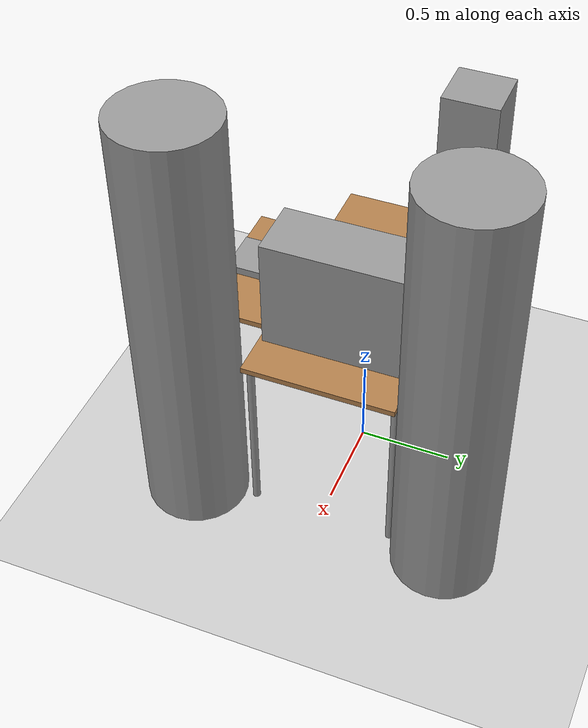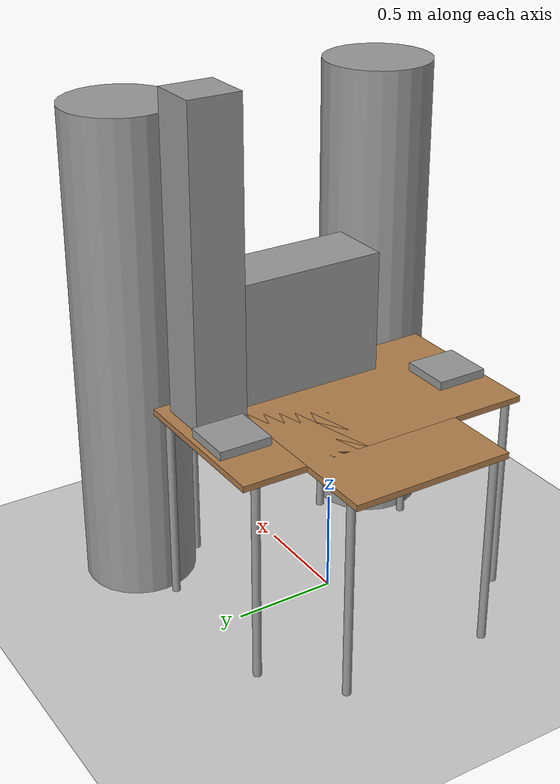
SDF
<sdf version="1.7">
 <world name="default">
  <light name="sun" type="directional">
   <pose>0 0 10 0 -0 0</pose>
   <diffuse>0.8 0.8 0.8 1</diffuse>
   <specular>0.2 0.2 0.2 1</specular>
   <attenuation>
    <range>1000</range>
    <constant>0.9</constant>
    <linear>0.01</linear>
    <quadratic>0.001</quadratic>
   </attenuation>
   <direction>-0.5 0.1 -0.9</direction>
   <spot><inner_angle>0</inner_angle><outer_angle>0</outer_angle><falloff>0</falloff></spot>
  </light>
  <model name="ground_plane">
   <static>1</static>
   <link name="link">
    <collision name="collision">
     <geometry><plane><normal>0 0 1</normal><size>100 100</size></plane></geometry>
     <surface>
      <contact><collide_bitmask>65535</collide_bitmask></contact>
      <friction><ode><mu>100</mu><mu2>50</mu2></ode></friction>
     </surface>
    </collision>
    <visual name="visual">
     <cast_shadows>0</cast_shadows>
     <geometry><plane><normal>0 0 1</normal><size>100 100</size></plane></geometry>
     <material>
      <script><uri>file://media/materials/scripts/gazebo.material</uri><name>Gazebo/Grey</name></script>
     </material>
    </visual>
   </link>
  </model>
  <gravity>0 0 -9.8</gravity>
  <magnetic_field>6e-06 2.3e-05 -4.2e-05</magnetic_field>
  <atmosphere type="adiabatic"/>
  <physics type="ode">
   <max_step_size>0.001</max_step_size>
   <real_time_factor>1</real_time_factor>
   <real_time_update_rate>1000</real_time_update_rate>
  </physics>
  <scene><ambient>0.4 0.4 0.4 1</ambient><background>0.7 0.7 0.7 1</background><shadows>1</shadows></scene>
  <spherical_coordinates>
   <surface_model>EARTH_WGS84</surface_model>
   <latitude_deg>0</latitude_deg>
   <longitude_deg>0</longitude_deg>
   <elevation>0</elevation>
   <heading_deg>0</heading_deg>
  </spherical_coordinates>
  <model name="table">
   <static>1</static>
   <link name="link">
    <collision name="surface">
     <pose>0 0 1 0 -0 0</pose>
     <geometry><box><size>1.5 0.8 0.03</size></box></geometry>
     <surface><friction><ode><mu>0.6</mu><mu2>0.6</mu2></ode></friction></surface>
    </collision>
    <visual name="visual1">
     <pose>0 0 1 0 -0 0</pose>
     <geometry><box><size>1.5 0.8 0.03</size></box></geometry>
     <material>
      <script><uri>file://media/materials/scripts/gazebo.material</uri><name>Gazebo/Wood</name></script>
     </material>
    </visual>
    <collision name="front_left_leg">
     <pose>0.68 0.38 0.5 0 -0 0</pose>
     <geometry><cylinder><radius>0.02</radius><length>1</length></cylinder></geometry>
    </collision>
    <visual name="front_left_leg">
     <pose>0.68 0.38 0.5 0 -0 0</pose>
     <geometry><cylinder><radius>0.02</radius><length>1</length></cylinder></geometry>
     <material>
      <script><uri>file://media/materials/scripts/gazebo.material</uri><name>Gazebo/Grey</name></script>
     </material>
    </visual>
    <collision name="front_right_leg">
     <pose>0.68 -0.38 0.5 0 -0 0</pose>
     <geometry><cylinder><radius>0.02</radius><length>1</length></cylinder></geometry>
    </collision>
    <visual name="front_right_leg">
     <pose>0.68 -0.38 0.5 0 -0 0</pose>
     <geometry><cylinder><radius>0.02</radius><length>1</length></cylinder></geometry>
     <material>
      <script><uri>file://media/materials/scripts/gazebo.material</uri><name>Gazebo/Grey</name></script>
     </material>
    </visual>
    <collision name="back_right_leg">
     <pose>-0.68 -0.38 0.5 0 -0 0</pose>
     <geometry><cylinder><radius>0.02</radius><length>1</length></cylinder></geometry>
    </collision>
    <visual name="back_right_leg">
     <pose>-0.68 -0.38 0.5 0 -0 0</pose>
     <geometry><cylinder><radius>0.02</radius><length>1</length></cylinder></geometry>
     <material>
      <script><uri>file://media/materials/scripts/gazebo.material</uri><name>Gazebo/Grey</name></script>
     </material>
    </visual>
    <collision name="back_left_leg">
     <pose>-0.68 0.38 0.5 0 -0 0</pose>
     <geometry><cylinder><radius>0.02</radius><length>1</length></cylinder></geometry>
    </collision>
    <visual name="back_left_leg">
     <pose>-0.68 0.38 0.5 0 -0 0</pose>
     <geometry><cylinder><radius>0.02</radius><length>1</length></cylinder></geometry>
     <material>
      <script><uri>file://media/materials/scripts/gazebo.material</uri><name>Gazebo/Grey</name></script>
     </material>
    </visual>
   </link>
   <pose>-0.021785 -0.027231 0 0 0 -1.56814</pose>
  </model>
  <model name="table_0">
   <static>1</static>
   <link name="link">
    <collision name="surface">
     <pose>0 0 1 0 -0 0</pose>
     <geometry><box><size>1.5 0.8 0.03</size></box></geometry>
     <surface><friction><ode><mu>0.6</mu><mu2>0.6</mu2></ode></friction></surface>
    </collision>
    <visual name="visual1">
     <pose>0 0 1 0 -0 0</pose>
     <geometry><box><size>1.5 0.8 0.03</size></box></geometry>
     <material>
      <script><uri>file://media/materials/scripts/gazebo.material</uri><name>Gazebo/Wood</name></script>
     </material>
    </visual>
    <collision name="front_left_leg">
     <pose>0.68 0.38 0.5 0 -0 0</pose>
     <geometry><cylinder><radius>0.02</radius><length>1</length></cylinder></geometry>
    </collision>
    <visual name="front_left_leg">
     <pose>0.68 0.38 0.5 0 -0 0</pose>
     <geometry><cylinder><radius>0.02</radius><length>1</length></cylinder></geometry>
     <material>
      <script><uri>file://media/materials/scripts/gazebo.material</uri><name>Gazebo/Grey</name></script>
     </material>
    </visual>
    <collision name="front_right_leg">
     <pose>0.68 -0.38 0.5 0 -0 0</pose>
     <geometry><cylinder><radius>0.02</radius><length>1</length></cylinder></geometry>
    </collision>
    <visual name="front_right_leg">
     <pose>0.68 -0.38 0.5 0 -0 0</pose>
     <geometry><cylinder><radius>0.02</radius><length>1</length></cylinder></geometry>
     <material>
      <script><uri>file://media/materials/scripts/gazebo.material</uri><name>Gazebo/Grey</name></script>
     </material>
    </visual>
    <collision name="back_right_leg">
     <pose>-0.68 -0.38 0.5 0 -0 0</pose>
     <geometry><cylinder><radius>0.02</radius><length>1</length></cylinder></geometry>
    </collision>
    <visual name="back_right_leg">
     <pose>-0.68 -0.38 0.5 0 -0 0</pose>
     <geometry><cylinder><radius>0.02</radius><length>1</length></cylinder></geometry>
     <material>
      <script><uri>file://media/materials/scripts/gazebo.material</uri><name>Gazebo/Grey</name></script>
     </material>
    </visual>
    <collision name="back_left_leg">
     <pose>-0.68 0.38 0.5 0 -0 0</pose>
     <geometry><cylinder><radius>0.02</radius><length>1</length></cylinder></geometry>
    </collision>
    <visual name="back_left_leg">
     <pose>-0.68 0.38 0.5 0 -0 0</pose>
     <geometry><cylinder><radius>0.02</radius><length>1</length></cylinder></geometry>
     <material>
      <script><uri>file://media/materials/scripts/gazebo.material</uri><name>Gazebo/Grey</name></script>
     </material>
    </visual>
   </link>
   <pose>-0.04357 0.005446 0 0 -0 0</pose>
  </model>
  <model name="unit_cylinder">
   <pose>0.661841 0.687712 1.19328 -0 -0 -0.000244</pose>
   <link name="link">
    <inertial>
     <mass>1</mass>
     <inertia><ixx>0.145833</ixx><ixy>0</ixy><ixz>0</ixz><iyy>0.145833</iyy><iyz>0</iyz><izz>0.125</izz></inertia>
    </inertial>
    <collision name="collision">
     <geometry><cylinder><radius>0.271906</radius><length>2.38658</length></cylinder></geometry>
    </collision>
    <visual name="visual">
     <geometry><cylinder><radius>0.271906</radius><length>2.38658</length></cylinder></geometry>
     <material>
      <script><name>Gazebo/Grey</name><uri>file://media/materials/scripts/gazebo.material</uri></script>
     </material>
    </visual>
   </link>
  </model>
  <model name="unit_cylinder_clone">
   <pose>0.675336 -0.702565 1.19328 0 -0 0.000114</pose>
   <link name="link">
    <inertial>
     <mass>1</mass>
     <inertia><ixx>0.145833</ixx><ixy>0</ixy><ixz>0</ixz><iyy>0.145833</iyy><iyz>0</iyz><izz>0.125</izz></inertia>
    </inertial>
    <collision name="collision">
     <geometry><cylinder><radius>0.271906</radius><length>2.38658</length></cylinder></geometry>
    </collision>
    <visual name="visual">
     <geometry><cylinder><radius>0.271906</radius><length>2.38658</length></cylinder></geometry>
     <material>
      <script><name>Gazebo/Grey</name><uri>file://media/materials/scripts/gazebo.material</uri></script>
     </material>
    </visual>
   </link>
  </model>
  <model name="unit_box">
   <pose>0.19453 0.537868 1.77077 -1e-06 1e-06 0.000128</pose>
   <link name="link">
    <inertial>
     <mass>1</mass>
     <inertia>
      <ixx>0.166667</ixx>
      <ixy>0</ixy>
      <ixz>0</ixz>
      <iyy>0.166667</iyy>
      <iyz>0</iyz>
      <izz>0.166667</izz>
     </inertia>
    </inertial>
    <collision name="collision"><geometry><box><size>0.248796 0.258947 1.51153</size></box></geometry></collision>
    <visual name="visual">
     <geometry><box><size>0.248796 0.258947 1.51153</size></box></geometry>
     <material>
      <script><name>Gazebo/Grey</name><uri>file://media/materials/scripts/gazebo.material</uri></script>
     </material>
    </visual>
   </link>
  </model>
  <model name="unit_box_clone">
   <pose>-0.054788 -0.62932 1.03602 0 4e-06 -6.1e-05</pose>
   <link name="link">
    <inertial>
     <mass>1</mass>
     <inertia>
      <ixx>0.166667</ixx>
      <ixy>0</ixy>
      <ixz>0</ixz>
      <iyy>0.166667</iyy>
      <iyz>0</iyz>
      <izz>0.166667</izz>
     </inertia>
    </inertial>
    <collision name="collision">
     <geometry><box><size>0.248796 0.258947 0.0420384</size></box></geometry>
    </collision>
    <visual name="visual">
     <geometry><box><size>0.248796 0.258947 0.0420384</size></box></geometry>
     <material>
      <script><name>Gazebo/Grey</name><uri>file://media/materials/scripts/gazebo.material</uri></script>
     </material>
    </visual>
   </link>
  </model>
  <model name="unit_box_clone_clone">
   <pose>-0.067525 0.568334 1.03602 0 -4e-06 -6.2e-05</pose>
   <link name="link">
    <inertial>
     <mass>1</mass>
     <inertia>
      <ixx>0.166667</ixx>
      <ixy>0</ixy>
      <ixz>0</ixz>
      <iyy>0.166667</iyy>
      <iyz>0</iyz>
      <izz>0.166667</izz>
     </inertia>
    </inertial>
    <collision name="collision">
     <geometry><box><size>0.248796 0.258947 0.042038</size></box></geometry>
    </collision>
    <visual name="visual">
     <geometry><box><size>0.248796 0.258947 0.042038</size></box></geometry>
     <material>
      <script><name>Gazebo/Grey</name><uri>file://media/materials/scripts/gazebo.material</uri></script>
     </material>
    </visual>
   </link>
  </model>
  <model name="unit_box_clone_clone_clone">
   <pose>0.326409 -0.002628 1.31691 -0 -2e-06 0.004729</pose>
   <link name="link">
    <inertial>
     <mass>1</mass>
     <inertia>
      <ixx>0.166667</ixx>
      <ixy>0</ixy>
      <ixz>0</ixz>
      <iyy>0.166667</iyy>
      <iyz>0</iyz>
      <izz>0.166667</izz>
     </inertia>
    </inertial>
    <collision name="collision">
     <geometry><box><size>0.316824 0.744869 0.603821</size></box></geometry>
    </collision>
    <visual name="visual">
     <geometry><box><size>0.316824 0.744869 0.603821</size></box></geometry>
     <material>
      <script><name>Gazebo/Grey</name><uri>file://media/materials/scripts/gazebo.material</uri></script>
     </material>
    </visual>
   </link>
  </model>
 </world>
</sdf>
